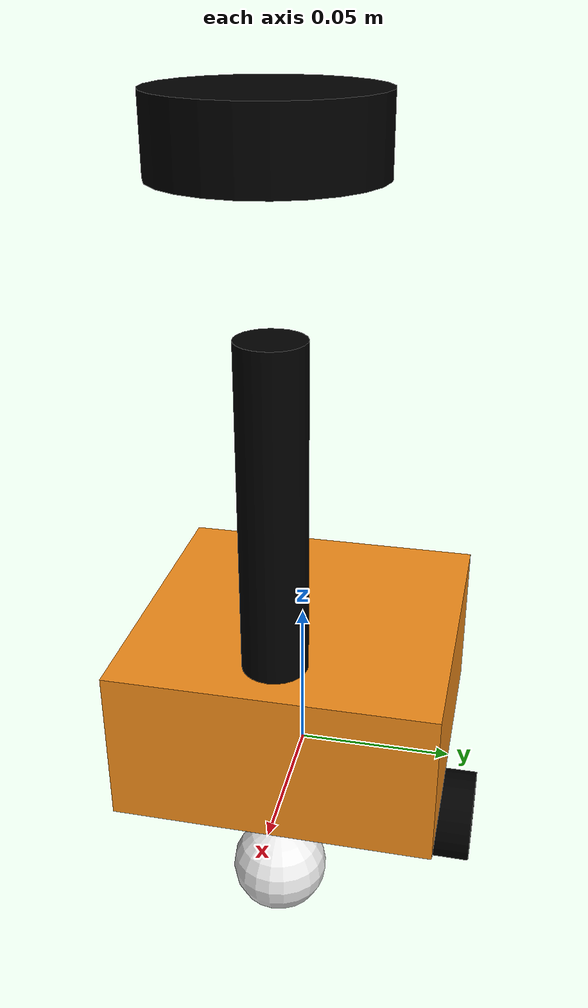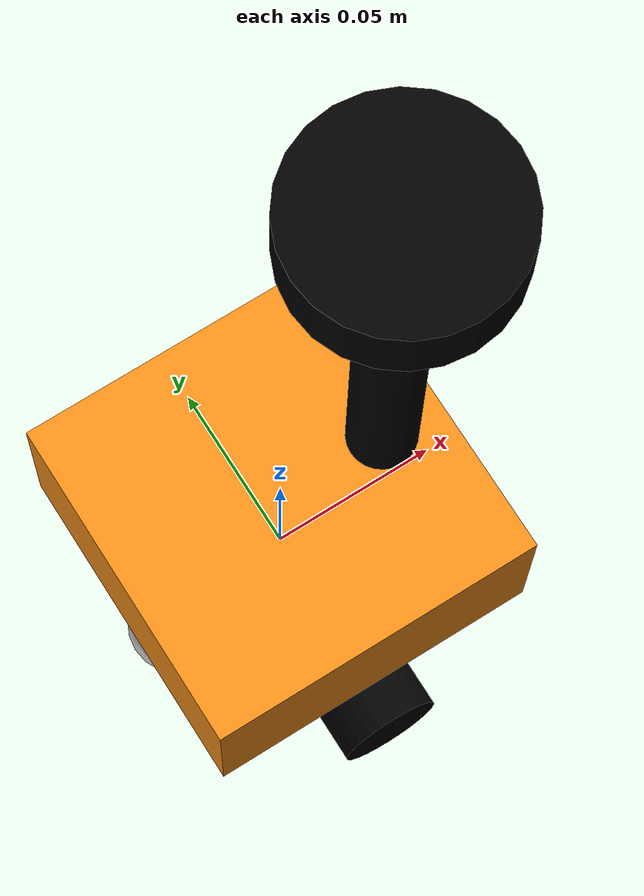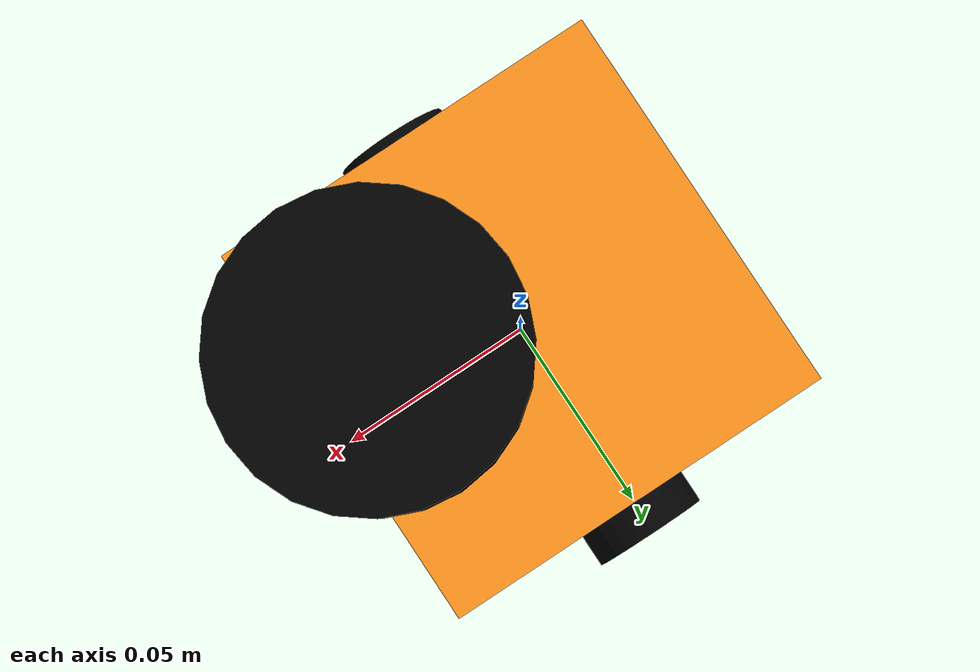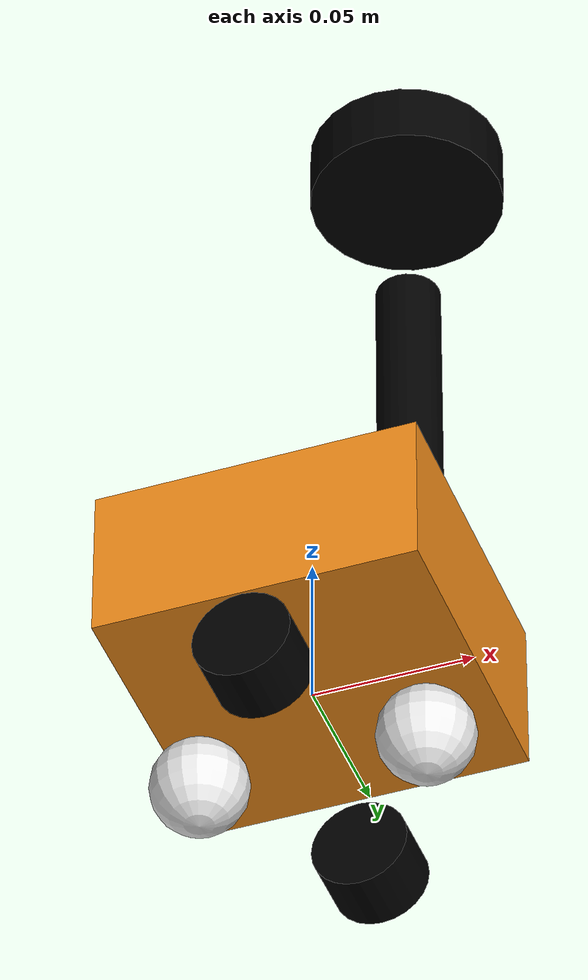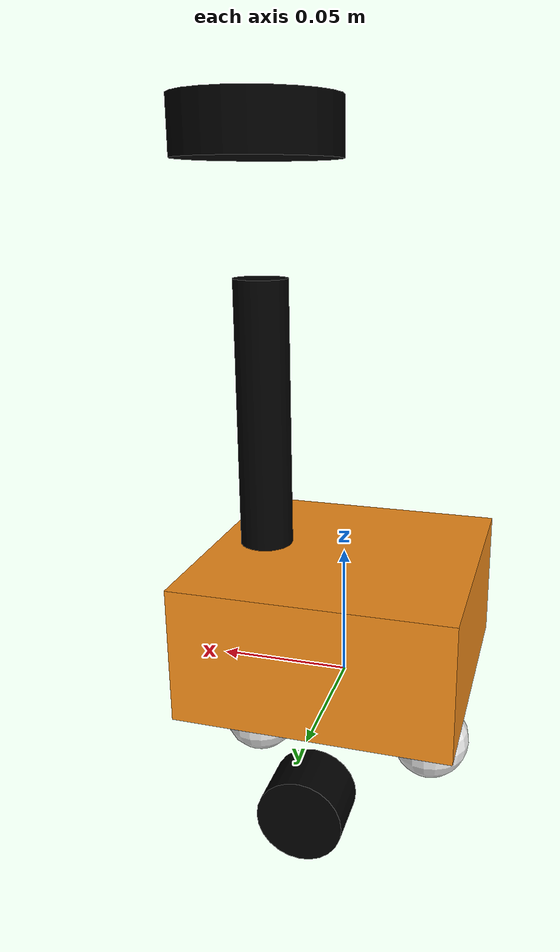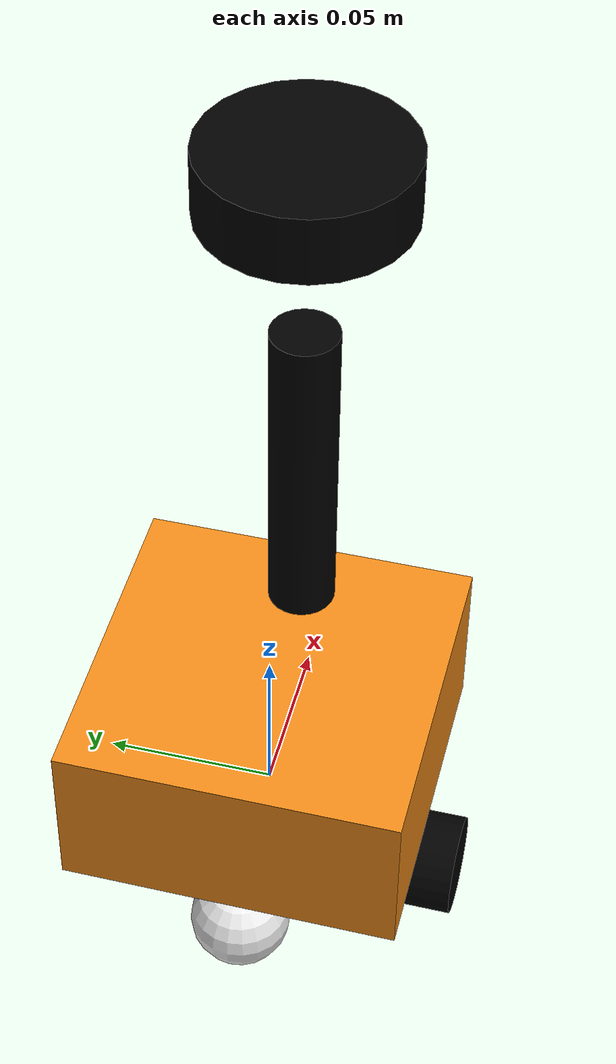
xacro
<?xml version="1.0"?>
<!-- Basic differential drive mobile base -->
<robot xmlns:xacro="http://www.ros.org/wiki/xacro" name="diffdrive_robot">
  <xacro:arg name="prefix" default="" />

  <xacro:include filename="$(find diffdrive_arduino)/urdf/diffbot_description.urdf.xacro" />

  <!-- Import Rviz colors -->
  <xacro:include filename="$(find diffdrive_arduino)/urdf/diffbot.materials.xacro" />

  <!-- Import diffbot ros2_control description -->
  <xacro:include filename="$(find diffdrive_arduino)/ros2_control/diffbot.ros2_control.xacro" />

  <xacro:include filename="inertial_macros.xacro"/>

  <xacro:include filename="lidar.xacro" />

  <xacro:diffbot prefix="$(arg prefix)" />

  <xacro:diffbot_ros2_control
    name="DiffBot" prefix="$(arg prefix)" />

</robot>

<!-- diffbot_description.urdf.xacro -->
<robot xmlns:xacro="http://www.ros.org/wiki/xacro">

  <xacro:macro name="diffbot" params="prefix">

  <!-- Constants for robot dimensions -->
  <xacro:property name="PI" value="3.1415926535897931"/>
  <xacro:property name="base_mass" value="0.3" /> <!-- arbitrary value for base mass -->
  <xacro:property name="base_width" value="0.1" />
  <xacro:property name="base_length" value="0.1" />
  <xacro:property name="base_height" value="0.05" />
  <xacro:property name="wheel_mass" value="0.3" /> <!-- arbitrary value for wheel mass -->
  <xacro:property name="wheel_len" value="0.020" />
  <xacro:property name="wheel_radius" value="0.015" />
  <xacro:property name="caster_wheel_mass" value="0.1" /> <!-- arbitrary value for caster wheel mass -->
  <xacro:property name="caster_wheel_radius" value="0.015" />
  <xacro:property name="z_offset" value="-${base_height/2}" /> <!-- Space btw top of beam and the each joint -->

      <!-- BASE_FOOTPRINT LINK -->

<joint name="base_footprint_joint" type="fixed">
        <parent link="base_link"/>
        <child link="base_footprint"/>
        <origin xyz="0 0 0" rpy="0 0 0"/>
    </joint>

    <link name="base_footprint">
    </link>

  <!-- Base Link -->
  <link name="${prefix}base_link">
    <collision>
      <origin xyz="0 0 0" rpy="0 0 0"/>
      <geometry>
        <box size="${base_width} ${base_length} ${base_height}"/>
      </geometry>
    </collision>

    <visual>
      <origin xyz="0 0 ${base_height/2}" rpy="0 0 0"/>
      <geometry>
        <box size="${base_width} ${base_length} ${base_height}"/>
      </geometry>
      <material name="orange"/>
    </visual>

    <inertial>
      <origin xyz="0 0 0" rpy="0 0 0"/>
      <mass value="${base_mass}"/>
      <inertia
        ixx="${base_mass / 12.0 * (base_length*base_length + base_height*base_height)}" ixy="0.0" ixz="0.0"
        iyy="${base_mass / 12.0 * (base_height*base_height + base_width*base_width)}" iyz="0.0"
        izz="${base_mass / 12.0 * (base_width*base_width + base_length*base_length)}"/>
      </inertial>
    </link>

    <joint name="${prefix}left_wheel_joint" type="continuous">
      <parent link="${prefix}base_link"/>
      <child link="${prefix}left_wheel"/>
      <origin xyz="0 -${base_width/2} ${z_offset}" rpy="0 0 0"/>
      <axis xyz="0 1 0"/>
      <dynamics damping="0.2"/>
    </joint>

    <!-- left wheel Link -->
    <link name="${prefix}left_wheel">
      <collision>
        <origin xyz="0 0 0" rpy="${PI/2} 0 0"/>
        <geometry>
          <cylinder length="${wheel_len}" radius="${wheel_radius}"/>
        </geometry>
      </collision>

      <visual>
        <origin xyz="0 0 0" rpy="${PI/2} 0 0"/>
        <geometry>
          <cylinder length="${wheel_len}" radius="${wheel_radius}"/>
        </geometry>
        <material name="black"/>
      </visual>

      <inertial>
        <origin xyz="0 0 0" rpy="${PI/2} 0 0"/>
        <mass value="${wheel_mass}"/>
        <inertia
          ixx="${wheel_mass / 12.0 * (3*wheel_radius + wheel_len*wheel_len)}" ixy="0.0" ixz="0.0"
          iyy="${wheel_mass / 12.0 * wheel_radius*wheel_radius}" iyz="0.0"
          izz="${wheel_mass / 12.0 * wheel_radius*wheel_radius}"/>
        </inertial>
      </link>

    <joint name="${prefix}right_wheel_joint" type="continuous">
      <parent link="${prefix}base_link"/>
      <child link="${prefix}right_wheel"/>
      <origin xyz="0 ${base_width/2} ${z_offset}" rpy="0 0 0"/>
      <axis xyz="0 1 0"/>
      <dynamics damping="0.2"/>
    </joint>

    <!-- right wheel Link -->
    <link name="${prefix}right_wheel">
      <collision>
        <origin xyz="0 0 0" rpy="${PI/2} 0 0"/>
        <geometry>
          <cylinder length="${wheel_len}" radius="${wheel_radius}"/>
        </geometry>
      </collision>

      <visual>
        <origin xyz="0 0 0" rpy="${PI/2} 0 0"/>
        <geometry>
          <cylinder length="${wheel_len}" radius="${wheel_radius}"/>
        </geometry>
        <material name="black"/>
      </visual>

      <inertial>
        <origin xyz="0 0 0" rpy="${PI/2} 0 0"/>
        <mass value="${wheel_mass}"/>
        <inertia
          ixx="${wheel_mass / 12.0 * (3*wheel_radius + wheel_len*wheel_len)}" ixy="0.0" ixz="0.0"
          iyy="${wheel_mass / 12.0 * wheel_radius*wheel_radius}" iyz="0.0"
          izz="${wheel_mass / 12.0 * wheel_radius*wheel_radius}"/>
        </inertial>
      </link>

    <joint name="${prefix}caster_frontal_wheel_joint" type="fixed">
      <parent link="${prefix}base_link"/>
      <child link="${prefix}caster_frontal_wheel"/>
      <origin xyz="${base_width/2 - caster_wheel_radius} 0 ${z_offset}" rpy="0 0 0"/>
    </joint>

    <!-- caster frontal wheel Link -->
    <link name="${prefix}caster_frontal_wheel">
      <collision>
        <origin xyz="0 0 0" rpy="0 0 0"/>
        <geometry>
          <sphere radius="${caster_wheel_radius}"/>
        </geometry>
      </collision>

      <visual>
        <origin xyz="0 0 0" rpy="0 0 0"/>
        <geometry>
          <sphere radius="${caster_wheel_radius}"/>
        </geometry>
        <material name="white"/>
      </visual>

      <inertial>
        <origin xyz="0 0 0" rpy="0 0 0"/>
        <mass value="${caster_wheel_mass}"/>
        <inertia
          ixx="${caster_wheel_mass * 0.4 * (caster_wheel_radius * caster_wheel_radius)}" ixy="0.0" ixz="0.0"
          iyy="${caster_wheel_mass * 0.4 * (caster_wheel_radius * caster_wheel_radius)}" iyz="0.0"
          izz="${caster_wheel_mass * 0.4 * (caster_wheel_radius * caster_wheel_radius)}"/>
        </inertial>
      </link>

    <joint name="${prefix}caster_rear_wheel_joint" type="fixed">
      <parent link="${prefix}base_link"/>
      <child link="${prefix}caster_rear_wheel"/>
      <origin xyz="${-base_width/2 + caster_wheel_radius} 0 ${z_offset}" rpy="0 0 0"/>
    </joint>

    <!-- caster rear wheel Link -->
    <link name="${prefix}caster_rear_wheel">
      <collision>
        <origin xyz="0 0 0" rpy="0 0 0"/>
        <geometry>
          <sphere radius="${caster_wheel_radius}"/>
        </geometry>
      </collision>

      <visual>
        <origin xyz="0 0 0" rpy="0 0 0"/>
        <geometry>
          <sphere radius="${caster_wheel_radius}"/>
        </geometry>
        <material name="white"/>
      </visual>

      <inertial>
        <origin xyz="0 0 0" rpy="0 0 0"/>
        <mass value="${caster_wheel_mass}"/>
        <inertia
          ixx="${caster_wheel_mass * 0.4 * (caster_wheel_radius * caster_wheel_radius)}" ixy="0.0" ixz="0.0"
          iyy="${caster_wheel_mass * 0.4 * (caster_wheel_radius * caster_wheel_radius)}" iyz="0.0"
          izz="${caster_wheel_mass * 0.4 * (caster_wheel_radius * caster_wheel_radius)}"/>
        </inertial>
      </link>

  </xacro:macro>

</robot>

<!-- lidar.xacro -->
<robot xmlns:xacro="http://www.ros.org/wiki/xacro" >

    <joint name="laser_joint" type="fixed">
        <origin xyz="0.031539 -0.0015685 0.20" rpy="0 0 0" />
        <parent link="base_link" />
        <child link="laser_frame" />
    </joint>

  <link name="laser_frame">
          <visual>
              <geometry>
                  <cylinder radius="0.03" length="0.02"/>
              </geometry>
              <material name="black">
                    <color rgba="0 0 0 1"/>
                </material>
          </visual>
          <visual>
              <origin xyz="0 0 -0.1"/>
              <geometry>
                  <cylinder radius="0.01" length="0.1"/>
              </geometry>
              <material name="black">
                    <color rgba="0 0 0 1"/>
                </material>
          </visual>
          <collision>
              <geometry>
                  <cylinder radius="0.03" length="0.02"/>
              </geometry>
          </collision>
          <xacro:inertial_cylinder mass="0.1" length="0.02" radius="0.03">
              <origin xyz="0 0 0" rpy="0 0 0"/>
          </xacro:inertial_cylinder>
      </link>

  <gazebo reference="laser_frame">
        <material>Gazebo/Blue</material>

        <sensor name="laser" type="ray">
            <pose> 0 0 0 0 0 0 </pose>
            <visualize>true</visualize>
            <update_rate>10</update_rate>
            <ray>
                <scan>
                    <horizontal>
                        <samples>360</samples>
                        <min_angle>-3.14</min_angle>
                        <max_angle>3.14</max_angle>
                    </horizontal>
                </scan>
                <range>
                    <min>0.3</min>
                    <max>12</max>
                </range>
            </ray>
            <plugin name="laser_controller" filename="libgazebo_ros_ray_sensor.so">
                <ros>
                    <argument>~/out:=scan</argument>
                </ros>
                <output_type>sensor_msgs/LaserScan</output_type>
                <frame_name>laser_frame</frame_name>
            </plugin>
        </sensor>
    </gazebo>

</robot>
